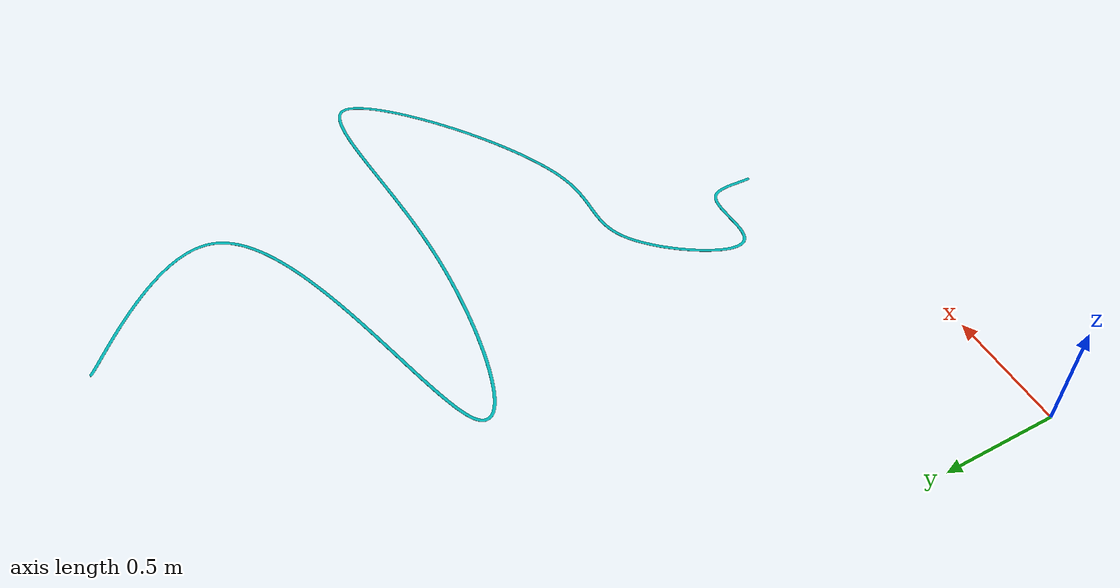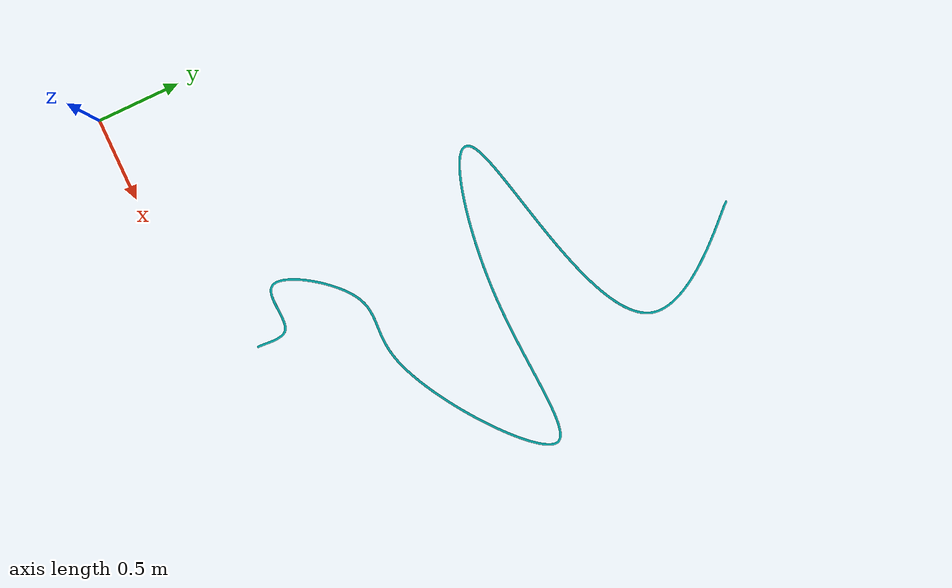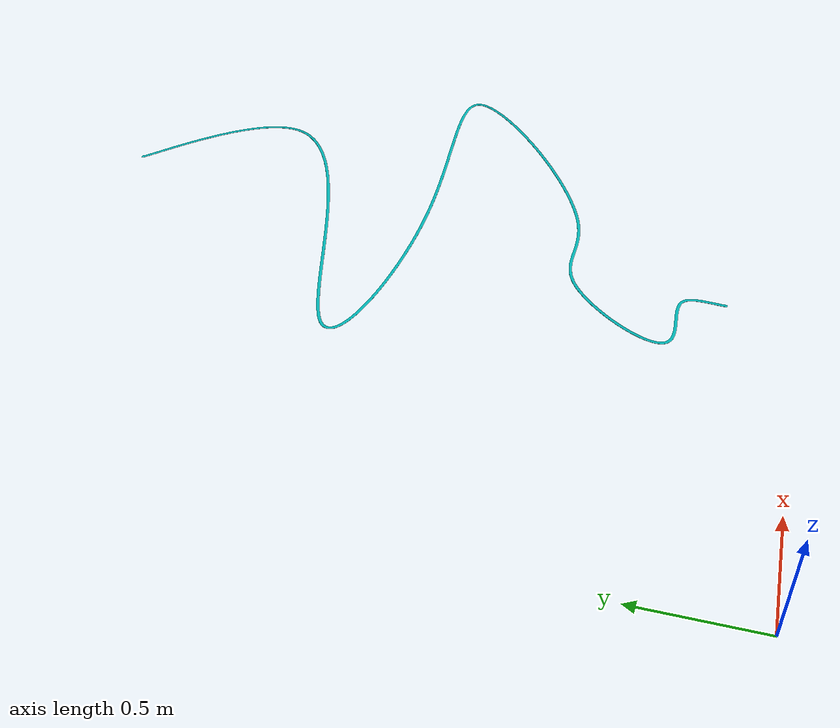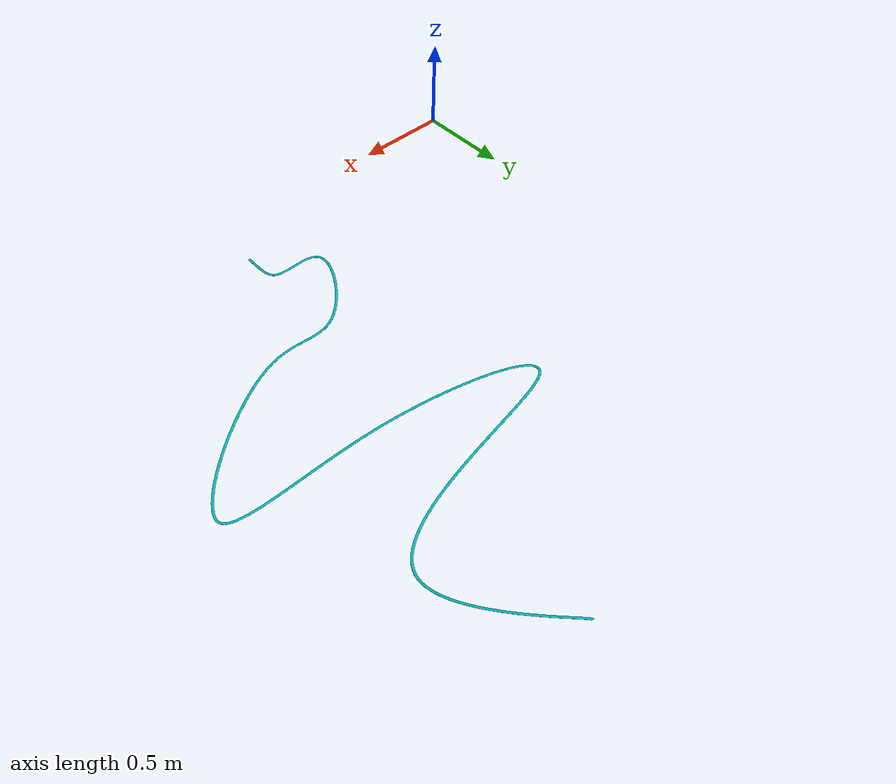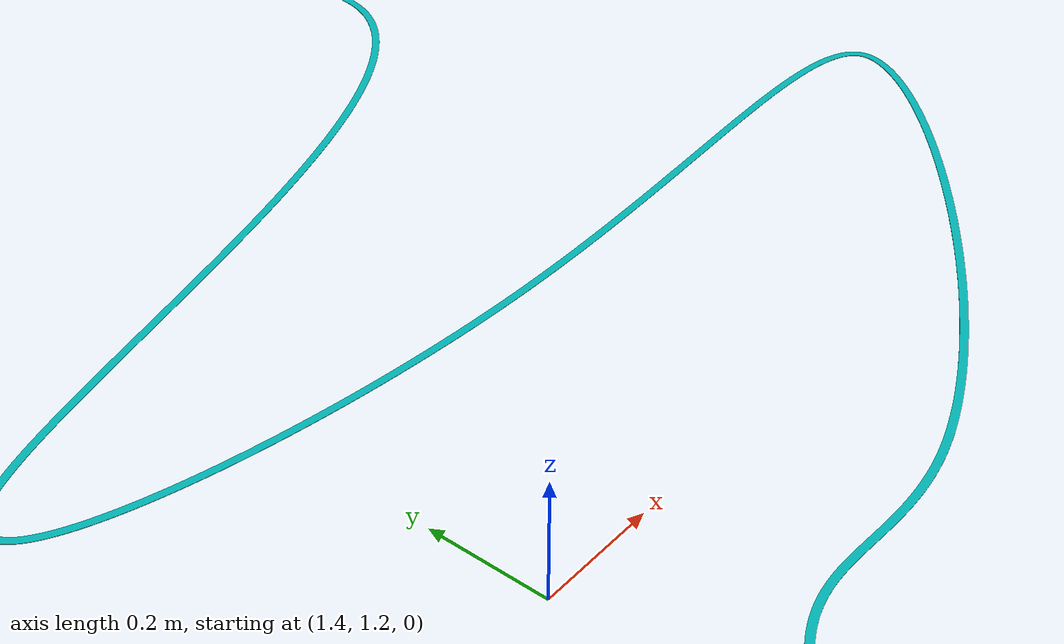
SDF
<?xml version='1.0'?>
<sdf version='1.7'>
  <model name='Line2'>
    <link name='link_1'>
      <inertial>
        <mass>1</mass>
        <inertia>
          <ixx>0.166667</ixx>
          <ixy>0</ixy>
          <ixz>0</ixz>
          <iyy>0.166667</iyy>
          <iyz>0</iyz>
          <izz>0.166667</izz>
        </inertia>
        <pose>0 0 0 0 -0 0</pose>
      </inertial>
      <pose>4e-06 0 0 0 -0 0</pose>
      <gravity>0</gravity>
      <self_collide>0</self_collide>
      <kinematic>1</kinematic>
      <enable_wind>0</enable_wind>
      <visual name='visual'>
        <pose>0 0 0 0 -0 0</pose>
        <geometry>
          <mesh>
            <uri>/home/ubuntu/catkin_ws/src/challenge2021/world/models/Line2.stl</uri>
            <scale>1 1 1</scale>
          </mesh>
        </geometry>
        <material>
          <lighting>1</lighting>
          <script>
            <uri>file://media/materials/scripts/gazebo.material</uri>
            <name>Gazebo/Grey</name>
          </script>
          <shader type='pixel'>
            <normal_map>__default__</normal_map>
          </shader>
          <ambient>0 0.3 0.3 1</ambient>
          <diffuse>0 0.7 0.7 1</diffuse>
          <specular>0.01 0.01 0.01 1</specular>
          <emissive>0 0 0 1</emissive>
        </material>
        <transparency>0</transparency>
        <cast_shadows>1</cast_shadows>
      </visual>
    </link>
    <static>0</static>
    <allow_auto_disable>1</allow_auto_disable>
  </model>
</sdf>
